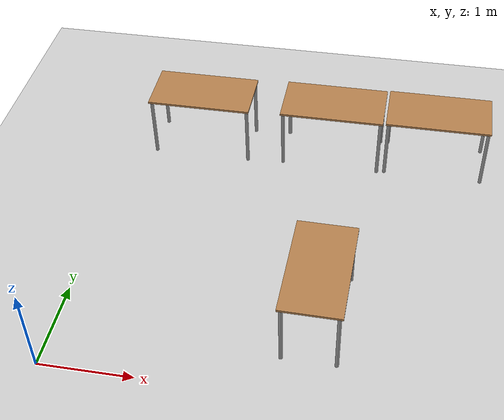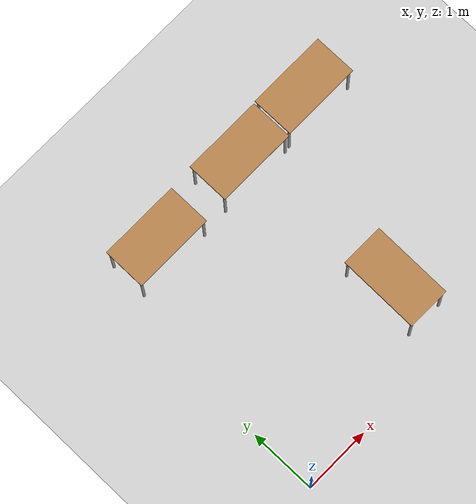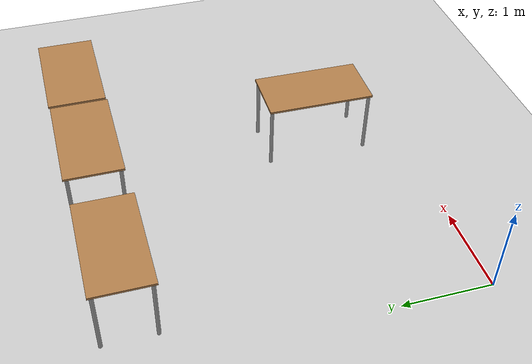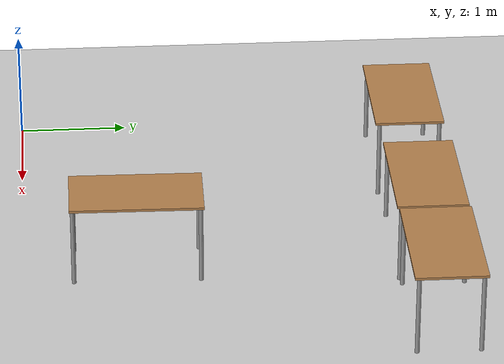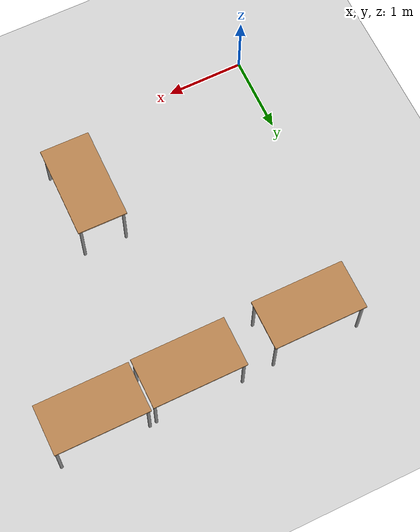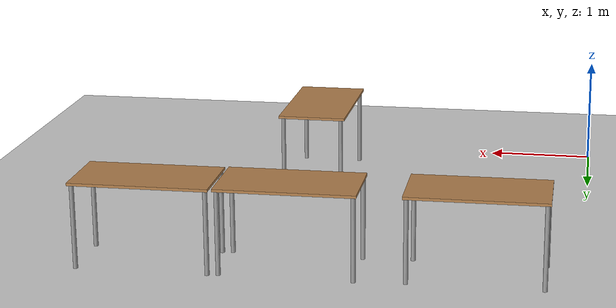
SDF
<sdf version="1.7">
 <world name="default">
  <model name="ground_plane">
   <static>1</static>
   <link name="link">
    <collision name="collision">
     <geometry><plane><normal>0 0 1</normal><size>100 100</size></plane></geometry>
     <surface>
      <contact><collide_bitmask>65535</collide_bitmask></contact>
      <friction><ode><mu>100</mu><mu2>50</mu2></ode></friction>
     </surface>
    </collision>
    <visual name="visual">
     <cast_shadows>0</cast_shadows>
     <geometry><plane><normal>0 0 1</normal><size>100 100</size></plane></geometry>
     <material>
      <script><uri>file://media/materials/scripts/gazebo.material</uri><name>Gazebo/Grey</name></script>
     </material>
    </visual>
   </link>
  </model>
  <model name="table_v2_clone_7">
   <link name="link">
    <inertial>
     <mass>1</mass>
     <inertia><ixx>1</ixx><ixy>0</ixy><ixz>0</ixz><iyy>1</iyy><iyz>0</iyz><izz>1</izz></inertia>
    </inertial>
    <visual name="visual1">
     <pose>0 0 0.75 0 -0 0</pose>
     <geometry><box><size>1.2 0.64 0.024</size></box></geometry>
     <material>
      <script><uri>file://media/materials/scripts/gazebo.material</uri><name>Gazebo/Wood</name></script>
      <shader type="pixel"><normal_map>__default__</normal_map></shader>
      <ambient>1 1 1 1</ambient>
      <diffuse>1 1 1 1</diffuse>
      <specular>0.2 0.2 0.2 1</specular>
      <emissive>0 0 0 1</emissive>
     </material>
    </visual>
    <visual name="front_left_leg">
     <pose>0.57 0.28 0.375 0 -0 0</pose>
     <geometry><cylinder><radius>0.02</radius><length>0.75</length></cylinder></geometry>
     <material>
      <script><uri>file://media/materials/scripts/gazebo.material</uri><name>Gazebo/Grey</name></script>
      <shader type="pixel"><normal_map>__default__</normal_map></shader>
      <ambient>0.3 0.3 0.3 1</ambient>
      <diffuse>0.7 0.7 0.7 1</diffuse>
      <specular>0.01 0.01 0.01 1</specular>
      <emissive>0 0 0 1</emissive>
     </material>
    </visual>
    <visual name="front_right_leg">
     <pose>0.57 -0.28 0.375 0 -0 0</pose>
     <geometry><cylinder><radius>0.02</radius><length>0.75</length></cylinder></geometry>
     <material>
      <script><uri>file://media/materials/scripts/gazebo.material</uri><name>Gazebo/Grey</name></script>
      <shader type="pixel"><normal_map>__default__</normal_map></shader>
      <ambient>0.3 0.3 0.3 1</ambient>
      <diffuse>0.7 0.7 0.7 1</diffuse>
      <specular>0.01 0.01 0.01 1</specular>
      <emissive>0 0 0 1</emissive>
     </material>
    </visual>
    <visual name="back_right_leg">
     <pose>-0.57 -0.28 0.375 0 -0 0</pose>
     <geometry><cylinder><radius>0.02</radius><length>0.75</length></cylinder></geometry>
     <material>
      <script><uri>file://media/materials/scripts/gazebo.material</uri><name>Gazebo/Grey</name></script>
      <shader type="pixel"><normal_map>__default__</normal_map></shader>
      <ambient>0.3 0.3 0.3 1</ambient>
      <diffuse>0.7 0.7 0.7 1</diffuse>
      <specular>0.01 0.01 0.01 1</specular>
      <emissive>0 0 0 1</emissive>
     </material>
    </visual>
    <visual name="back_left_leg">
     <pose>-0.57 0.28 0.375 0 -0 0</pose>
     <geometry><cylinder><radius>0.02</radius><length>0.75</length></cylinder></geometry>
     <material>
      <script><uri>file://media/materials/scripts/gazebo.material</uri><name>Gazebo/Grey</name></script>
      <shader type="pixel"><normal_map>__default__</normal_map></shader>
      <ambient>0.3 0.3 0.3 1</ambient>
      <diffuse>0.7 0.7 0.7 1</diffuse>
      <specular>0.01 0.01 0.01 1</specular>
      <emissive>0 0 0 1</emissive>
     </material>
    </visual>
    <collision name="surface">
     <pose>0 0 0.75 0 -0 0</pose>
     <geometry><box><size>1.2 0.64 0.024</size></box></geometry>
     <surface>
      <friction>
       <ode><mu>0.6</mu><mu2>0.6</mu2><fdir1>0 0 0</fdir1><slip1>0</slip1><slip2>0</slip2></ode>
       <torsional>
        <coefficient>1</coefficient>
        <patch_radius>0</patch_radius>
        <surface_radius>0</surface_radius>
        <use_patch_radius>1</use_patch_radius>
        <ode><slip>0</slip></ode>
       </torsional>
      </friction>
      <bounce><restitution_coefficient>0</restitution_coefficient><threshold>1e+06</threshold></bounce>
      <contact>
       <collide_without_contact>0</collide_without_contact>
       <collide_without_contact_bitmask>1</collide_without_contact_bitmask>
       <collide_bitmask>1</collide_bitmask>
       <ode>
        <soft_cfm>0</soft_cfm>
        <soft_erp>0.2</soft_erp>
        <kp>1e+13</kp>
        <kd>1</kd>
        <max_vel>0.01</max_vel>
        <min_depth>0</min_depth>
       </ode>
       <bullet>
        <split_impulse>1</split_impulse>
        <split_impulse_penetration_threshold>-0.01</split_impulse_penetration_threshold>
        <soft_cfm>0</soft_cfm>
        <soft_erp>0.2</soft_erp>
        <kp>1e+13</kp>
        <kd>1</kd>
       </bullet>
      </contact>
     </surface>
    </collision>
    <collision name="front_left_leg">
     <pose>0.57 0.28 0.375 0 -0 0</pose>
     <geometry><cylinder><radius>0.02</radius><length>0.75</length></cylinder></geometry>
     <surface>
      <friction>
       <ode><mu>1</mu><mu2>1</mu2><fdir1>0 0 0</fdir1><slip1>0</slip1><slip2>0</slip2></ode>
       <torsional>
        <coefficient>1</coefficient>
        <patch_radius>0</patch_radius>
        <surface_radius>0</surface_radius>
        <use_patch_radius>1</use_patch_radius>
        <ode><slip>0</slip></ode>
       </torsional>
      </friction>
      <bounce><restitution_coefficient>0</restitution_coefficient><threshold>1e+06</threshold></bounce>
      <contact>
       <collide_without_contact>0</collide_without_contact>
       <collide_without_contact_bitmask>1</collide_without_contact_bitmask>
       <collide_bitmask>1</collide_bitmask>
       <ode>
        <soft_cfm>0</soft_cfm>
        <soft_erp>0.2</soft_erp>
        <kp>1e+13</kp>
        <kd>1</kd>
        <max_vel>0.01</max_vel>
        <min_depth>0</min_depth>
       </ode>
       <bullet>
        <split_impulse>1</split_impulse>
        <split_impulse_penetration_threshold>-0.01</split_impulse_penetration_threshold>
        <soft_cfm>0</soft_cfm>
        <soft_erp>0.2</soft_erp>
        <kp>1e+13</kp>
        <kd>1</kd>
       </bullet>
      </contact>
     </surface>
    </collision>
    <collision name="front_right_leg">
     <pose>0.57 -0.28 0.375 0 -0 0</pose>
     <geometry><cylinder><radius>0.02</radius><length>0.75</length></cylinder></geometry>
     <surface>
      <friction>
       <ode><mu>1</mu><mu2>1</mu2><fdir1>0 0 0</fdir1><slip1>0</slip1><slip2>0</slip2></ode>
       <torsional>
        <coefficient>1</coefficient>
        <patch_radius>0</patch_radius>
        <surface_radius>0</surface_radius>
        <use_patch_radius>1</use_patch_radius>
        <ode><slip>0</slip></ode>
       </torsional>
      </friction>
      <bounce><restitution_coefficient>0</restitution_coefficient><threshold>1e+06</threshold></bounce>
      <contact>
       <collide_without_contact>0</collide_without_contact>
       <collide_without_contact_bitmask>1</collide_without_contact_bitmask>
       <collide_bitmask>1</collide_bitmask>
       <ode>
        <soft_cfm>0</soft_cfm>
        <soft_erp>0.2</soft_erp>
        <kp>1e+13</kp>
        <kd>1</kd>
        <max_vel>0.01</max_vel>
        <min_depth>0</min_depth>
       </ode>
       <bullet>
        <split_impulse>1</split_impulse>
        <split_impulse_penetration_threshold>-0.01</split_impulse_penetration_threshold>
        <soft_cfm>0</soft_cfm>
        <soft_erp>0.2</soft_erp>
        <kp>1e+13</kp>
        <kd>1</kd>
       </bullet>
      </contact>
     </surface>
    </collision>
    <collision name="back_right_leg">
     <pose>-0.57 -0.28 0.375 0 -0 0</pose>
     <geometry><cylinder><radius>0.02</radius><length>0.75</length></cylinder></geometry>
     <surface>
      <friction>
       <ode><mu>1</mu><mu2>1</mu2><fdir1>0 0 0</fdir1><slip1>0</slip1><slip2>0</slip2></ode>
       <torsional>
        <coefficient>1</coefficient>
        <patch_radius>0</patch_radius>
        <surface_radius>0</surface_radius>
        <use_patch_radius>1</use_patch_radius>
        <ode><slip>0</slip></ode>
       </torsional>
      </friction>
      <bounce><restitution_coefficient>0</restitution_coefficient><threshold>1e+06</threshold></bounce>
      <contact>
       <collide_without_contact>0</collide_without_contact>
       <collide_without_contact_bitmask>1</collide_without_contact_bitmask>
       <collide_bitmask>1</collide_bitmask>
       <ode>
        <soft_cfm>0</soft_cfm>
        <soft_erp>0.2</soft_erp>
        <kp>1e+13</kp>
        <kd>1</kd>
        <max_vel>0.01</max_vel>
        <min_depth>0</min_depth>
       </ode>
       <bullet>
        <split_impulse>1</split_impulse>
        <split_impulse_penetration_threshold>-0.01</split_impulse_penetration_threshold>
        <soft_cfm>0</soft_cfm>
        <soft_erp>0.2</soft_erp>
        <kp>1e+13</kp>
        <kd>1</kd>
       </bullet>
      </contact>
     </surface>
    </collision>
    <collision name="back_left_leg">
     <pose>-0.57 0.28 0.375 0 -0 0</pose>
     <geometry><cylinder><radius>0.02</radius><length>0.75</length></cylinder></geometry>
     <surface>
      <friction>
       <ode><mu>1</mu><mu2>1</mu2><fdir1>0 0 0</fdir1><slip1>0</slip1><slip2>0</slip2></ode>
       <torsional>
        <coefficient>1</coefficient>
        <patch_radius>0</patch_radius>
        <surface_radius>0</surface_radius>
        <use_patch_radius>1</use_patch_radius>
        <ode><slip>0</slip></ode>
       </torsional>
      </friction>
      <bounce><restitution_coefficient>0</restitution_coefficient><threshold>1e+06</threshold></bounce>
      <contact>
       <collide_without_contact>0</collide_without_contact>
       <collide_without_contact_bitmask>1</collide_without_contact_bitmask>
       <collide_bitmask>1</collide_bitmask>
       <ode>
        <soft_cfm>0</soft_cfm>
        <soft_erp>0.2</soft_erp>
        <kp>1e+13</kp>
        <kd>1</kd>
        <max_vel>0.01</max_vel>
        <min_depth>0</min_depth>
       </ode>
       <bullet>
        <split_impulse>1</split_impulse>
        <split_impulse_penetration_threshold>-0.01</split_impulse_penetration_threshold>
        <soft_cfm>0</soft_cfm>
        <soft_erp>0.2</soft_erp>
        <kp>1e+13</kp>
        <kd>1</kd>
       </bullet>
      </contact>
     </surface>
    </collision>
   </link>
   <static>1</static>
   <pose>0.894087 3.62509 0 0 -0 0</pose>
  </model>
  <model name="table_v2_clone_8">
   <link name="link">
    <inertial>
     <mass>1</mass>
     <inertia><ixx>1</ixx><ixy>0</ixy><ixz>0</ixz><iyy>1</iyy><iyz>0</iyz><izz>1</izz></inertia>
    </inertial>
    <visual name="visual1">
     <pose>0 0 0.75 0 -0 0</pose>
     <geometry><box><size>1.2 0.64 0.024</size></box></geometry>
     <material>
      <script><uri>file://media/materials/scripts/gazebo.material</uri><name>Gazebo/Wood</name></script>
      <shader type="pixel"><normal_map>__default__</normal_map></shader>
      <ambient>1 1 1 1</ambient>
      <diffuse>1 1 1 1</diffuse>
      <specular>0.2 0.2 0.2 1</specular>
      <emissive>0 0 0 1</emissive>
     </material>
    </visual>
    <visual name="front_left_leg">
     <pose>0.57 0.28 0.375 0 -0 0</pose>
     <geometry><cylinder><radius>0.02</radius><length>0.75</length></cylinder></geometry>
     <material>
      <script><uri>file://media/materials/scripts/gazebo.material</uri><name>Gazebo/Grey</name></script>
      <shader type="pixel"><normal_map>__default__</normal_map></shader>
      <ambient>0.3 0.3 0.3 1</ambient>
      <diffuse>0.7 0.7 0.7 1</diffuse>
      <specular>0.01 0.01 0.01 1</specular>
      <emissive>0 0 0 1</emissive>
     </material>
    </visual>
    <visual name="front_right_leg">
     <pose>0.57 -0.28 0.375 0 -0 0</pose>
     <geometry><cylinder><radius>0.02</radius><length>0.75</length></cylinder></geometry>
     <material>
      <script><uri>file://media/materials/scripts/gazebo.material</uri><name>Gazebo/Grey</name></script>
      <shader type="pixel"><normal_map>__default__</normal_map></shader>
      <ambient>0.3 0.3 0.3 1</ambient>
      <diffuse>0.7 0.7 0.7 1</diffuse>
      <specular>0.01 0.01 0.01 1</specular>
      <emissive>0 0 0 1</emissive>
     </material>
    </visual>
    <visual name="back_right_leg">
     <pose>-0.57 -0.28 0.375 0 -0 0</pose>
     <geometry><cylinder><radius>0.02</radius><length>0.75</length></cylinder></geometry>
     <material>
      <script><uri>file://media/materials/scripts/gazebo.material</uri><name>Gazebo/Grey</name></script>
      <shader type="pixel"><normal_map>__default__</normal_map></shader>
      <ambient>0.3 0.3 0.3 1</ambient>
      <diffuse>0.7 0.7 0.7 1</diffuse>
      <specular>0.01 0.01 0.01 1</specular>
      <emissive>0 0 0 1</emissive>
     </material>
    </visual>
    <visual name="back_left_leg">
     <pose>-0.57 0.28 0.375 0 -0 0</pose>
     <geometry><cylinder><radius>0.02</radius><length>0.75</length></cylinder></geometry>
     <material>
      <script><uri>file://media/materials/scripts/gazebo.material</uri><name>Gazebo/Grey</name></script>
      <shader type="pixel"><normal_map>__default__</normal_map></shader>
      <ambient>0.3 0.3 0.3 1</ambient>
      <diffuse>0.7 0.7 0.7 1</diffuse>
      <specular>0.01 0.01 0.01 1</specular>
      <emissive>0 0 0 1</emissive>
     </material>
    </visual>
    <collision name="surface">
     <pose>0 0 0.75 0 -0 0</pose>
     <geometry><box><size>1.2 0.64 0.024</size></box></geometry>
     <surface>
      <friction>
       <ode><mu>0.6</mu><mu2>0.6</mu2><fdir1>0 0 0</fdir1><slip1>0</slip1><slip2>0</slip2></ode>
       <torsional>
        <coefficient>1</coefficient>
        <patch_radius>0</patch_radius>
        <surface_radius>0</surface_radius>
        <use_patch_radius>1</use_patch_radius>
        <ode><slip>0</slip></ode>
       </torsional>
      </friction>
      <bounce><restitution_coefficient>0</restitution_coefficient><threshold>1e+06</threshold></bounce>
      <contact>
       <collide_without_contact>0</collide_without_contact>
       <collide_without_contact_bitmask>1</collide_without_contact_bitmask>
       <collide_bitmask>1</collide_bitmask>
       <ode>
        <soft_cfm>0</soft_cfm>
        <soft_erp>0.2</soft_erp>
        <kp>1e+13</kp>
        <kd>1</kd>
        <max_vel>0.01</max_vel>
        <min_depth>0</min_depth>
       </ode>
       <bullet>
        <split_impulse>1</split_impulse>
        <split_impulse_penetration_threshold>-0.01</split_impulse_penetration_threshold>
        <soft_cfm>0</soft_cfm>
        <soft_erp>0.2</soft_erp>
        <kp>1e+13</kp>
        <kd>1</kd>
       </bullet>
      </contact>
     </surface>
    </collision>
    <collision name="front_left_leg">
     <pose>0.57 0.28 0.375 0 -0 0</pose>
     <geometry><cylinder><radius>0.02</radius><length>0.75</length></cylinder></geometry>
     <surface>
      <friction>
       <ode><mu>1</mu><mu2>1</mu2><fdir1>0 0 0</fdir1><slip1>0</slip1><slip2>0</slip2></ode>
       <torsional>
        <coefficient>1</coefficient>
        <patch_radius>0</patch_radius>
        <surface_radius>0</surface_radius>
        <use_patch_radius>1</use_patch_radius>
        <ode><slip>0</slip></ode>
       </torsional>
      </friction>
      <bounce><restitution_coefficient>0</restitution_coefficient><threshold>1e+06</threshold></bounce>
      <contact>
       <collide_without_contact>0</collide_without_contact>
       <collide_without_contact_bitmask>1</collide_without_contact_bitmask>
       <collide_bitmask>1</collide_bitmask>
       <ode>
        <soft_cfm>0</soft_cfm>
        <soft_erp>0.2</soft_erp>
        <kp>1e+13</kp>
        <kd>1</kd>
        <max_vel>0.01</max_vel>
        <min_depth>0</min_depth>
       </ode>
       <bullet>
        <split_impulse>1</split_impulse>
        <split_impulse_penetration_threshold>-0.01</split_impulse_penetration_threshold>
        <soft_cfm>0</soft_cfm>
        <soft_erp>0.2</soft_erp>
        <kp>1e+13</kp>
        <kd>1</kd>
       </bullet>
      </contact>
     </surface>
    </collision>
    <collision name="front_right_leg">
     <pose>0.57 -0.28 0.375 0 -0 0</pose>
     <geometry><cylinder><radius>0.02</radius><length>0.75</length></cylinder></geometry>
     <surface>
      <friction>
       <ode><mu>1</mu><mu2>1</mu2><fdir1>0 0 0</fdir1><slip1>0</slip1><slip2>0</slip2></ode>
       <torsional>
        <coefficient>1</coefficient>
        <patch_radius>0</patch_radius>
        <surface_radius>0</surface_radius>
        <use_patch_radius>1</use_patch_radius>
        <ode><slip>0</slip></ode>
       </torsional>
      </friction>
      <bounce><restitution_coefficient>0</restitution_coefficient><threshold>1e+06</threshold></bounce>
      <contact>
       <collide_without_contact>0</collide_without_contact>
       <collide_without_contact_bitmask>1</collide_without_contact_bitmask>
       <collide_bitmask>1</collide_bitmask>
       <ode>
        <soft_cfm>0</soft_cfm>
        <soft_erp>0.2</soft_erp>
        <kp>1e+13</kp>
        <kd>1</kd>
        <max_vel>0.01</max_vel>
        <min_depth>0</min_depth>
       </ode>
       <bullet>
        <split_impulse>1</split_impulse>
        <split_impulse_penetration_threshold>-0.01</split_impulse_penetration_threshold>
        <soft_cfm>0</soft_cfm>
        <soft_erp>0.2</soft_erp>
        <kp>1e+13</kp>
        <kd>1</kd>
       </bullet>
      </contact>
     </surface>
    </collision>
    <collision name="back_right_leg">
     <pose>-0.57 -0.28 0.375 0 -0 0</pose>
     <geometry><cylinder><radius>0.02</radius><length>0.75</length></cylinder></geometry>
     <surface>
      <friction>
       <ode><mu>1</mu><mu2>1</mu2><fdir1>0 0 0</fdir1><slip1>0</slip1><slip2>0</slip2></ode>
       <torsional>
        <coefficient>1</coefficient>
        <patch_radius>0</patch_radius>
        <surface_radius>0</surface_radius>
        <use_patch_radius>1</use_patch_radius>
        <ode><slip>0</slip></ode>
       </torsional>
      </friction>
      <bounce><restitution_coefficient>0</restitution_coefficient><threshold>1e+06</threshold></bounce>
      <contact>
       <collide_without_contact>0</collide_without_contact>
       <collide_without_contact_bitmask>1</collide_without_contact_bitmask>
       <collide_bitmask>1</collide_bitmask>
       <ode>
        <soft_cfm>0</soft_cfm>
        <soft_erp>0.2</soft_erp>
        <kp>1e+13</kp>
        <kd>1</kd>
        <max_vel>0.01</max_vel>
        <min_depth>0</min_depth>
       </ode>
       <bullet>
        <split_impulse>1</split_impulse>
        <split_impulse_penetration_threshold>-0.01</split_impulse_penetration_threshold>
        <soft_cfm>0</soft_cfm>
        <soft_erp>0.2</soft_erp>
        <kp>1e+13</kp>
        <kd>1</kd>
       </bullet>
      </contact>
     </surface>
    </collision>
    <collision name="back_left_leg">
     <pose>-0.57 0.28 0.375 0 -0 0</pose>
     <geometry><cylinder><radius>0.02</radius><length>0.75</length></cylinder></geometry>
     <surface>
      <friction>
       <ode><mu>1</mu><mu2>1</mu2><fdir1>0 0 0</fdir1><slip1>0</slip1><slip2>0</slip2></ode>
       <torsional>
        <coefficient>1</coefficient>
        <patch_radius>0</patch_radius>
        <surface_radius>0</surface_radius>
        <use_patch_radius>1</use_patch_radius>
        <ode><slip>0</slip></ode>
       </torsional>
      </friction>
      <bounce><restitution_coefficient>0</restitution_coefficient><threshold>1e+06</threshold></bounce>
      <contact>
       <collide_without_contact>0</collide_without_contact>
       <collide_without_contact_bitmask>1</collide_without_contact_bitmask>
       <collide_bitmask>1</collide_bitmask>
       <ode>
        <soft_cfm>0</soft_cfm>
        <soft_erp>0.2</soft_erp>
        <kp>1e+13</kp>
        <kd>1</kd>
        <max_vel>0.01</max_vel>
        <min_depth>0</min_depth>
       </ode>
       <bullet>
        <split_impulse>1</split_impulse>
        <split_impulse_penetration_threshold>-0.01</split_impulse_penetration_threshold>
        <soft_cfm>0</soft_cfm>
        <soft_erp>0.2</soft_erp>
        <kp>1e+13</kp>
        <kd>1</kd>
       </bullet>
      </contact>
     </surface>
    </collision>
   </link>
   <static>1</static>
   <pose>2.46411 3.6546 0 0 -0 0</pose>
  </model>
  <model name="table_v2_clone_9">
   <link name="link">
    <inertial>
     <mass>1</mass>
     <inertia><ixx>1</ixx><ixy>0</ixy><ixz>0</ixz><iyy>1</iyy><iyz>0</iyz><izz>1</izz></inertia>
    </inertial>
    <visual name="visual1">
     <pose>0 0 0.75 0 -0 0</pose>
     <geometry><box><size>1.2 0.64 0.024</size></box></geometry>
     <material>
      <script><uri>file://media/materials/scripts/gazebo.material</uri><name>Gazebo/Wood</name></script>
      <shader type="pixel"><normal_map>__default__</normal_map></shader>
      <ambient>1 1 1 1</ambient>
      <diffuse>1 1 1 1</diffuse>
      <specular>0.2 0.2 0.2 1</specular>
      <emissive>0 0 0 1</emissive>
     </material>
    </visual>
    <visual name="front_left_leg">
     <pose>0.57 0.28 0.375 0 -0 0</pose>
     <geometry><cylinder><radius>0.02</radius><length>0.75</length></cylinder></geometry>
     <material>
      <script><uri>file://media/materials/scripts/gazebo.material</uri><name>Gazebo/Grey</name></script>
      <shader type="pixel"><normal_map>__default__</normal_map></shader>
      <ambient>0.3 0.3 0.3 1</ambient>
      <diffuse>0.7 0.7 0.7 1</diffuse>
      <specular>0.01 0.01 0.01 1</specular>
      <emissive>0 0 0 1</emissive>
     </material>
    </visual>
    <visual name="front_right_leg">
     <pose>0.57 -0.28 0.375 0 -0 0</pose>
     <geometry><cylinder><radius>0.02</radius><length>0.75</length></cylinder></geometry>
     <material>
      <script><uri>file://media/materials/scripts/gazebo.material</uri><name>Gazebo/Grey</name></script>
      <shader type="pixel"><normal_map>__default__</normal_map></shader>
      <ambient>0.3 0.3 0.3 1</ambient>
      <diffuse>0.7 0.7 0.7 1</diffuse>
      <specular>0.01 0.01 0.01 1</specular>
      <emissive>0 0 0 1</emissive>
     </material>
    </visual>
    <visual name="back_right_leg">
     <pose>-0.57 -0.28 0.375 0 -0 0</pose>
     <geometry><cylinder><radius>0.02</radius><length>0.75</length></cylinder></geometry>
     <material>
      <script><uri>file://media/materials/scripts/gazebo.material</uri><name>Gazebo/Grey</name></script>
      <shader type="pixel"><normal_map>__default__</normal_map></shader>
      <ambient>0.3 0.3 0.3 1</ambient>
      <diffuse>0.7 0.7 0.7 1</diffuse>
      <specular>0.01 0.01 0.01 1</specular>
      <emissive>0 0 0 1</emissive>
     </material>
    </visual>
    <visual name="back_left_leg">
     <pose>-0.57 0.28 0.375 0 -0 0</pose>
     <geometry><cylinder><radius>0.02</radius><length>0.75</length></cylinder></geometry>
     <material>
      <script><uri>file://media/materials/scripts/gazebo.material</uri><name>Gazebo/Grey</name></script>
      <shader type="pixel"><normal_map>__default__</normal_map></shader>
      <ambient>0.3 0.3 0.3 1</ambient>
      <diffuse>0.7 0.7 0.7 1</diffuse>
      <specular>0.01 0.01 0.01 1</specular>
      <emissive>0 0 0 1</emissive>
     </material>
    </visual>
    <collision name="surface">
     <pose>0 0 0.75 0 -0 0</pose>
     <geometry><box><size>1.2 0.64 0.024</size></box></geometry>
     <surface>
      <friction>
       <ode><mu>0.6</mu><mu2>0.6</mu2><fdir1>0 0 0</fdir1><slip1>0</slip1><slip2>0</slip2></ode>
       <torsional>
        <coefficient>1</coefficient>
        <patch_radius>0</patch_radius>
        <surface_radius>0</surface_radius>
        <use_patch_radius>1</use_patch_radius>
        <ode><slip>0</slip></ode>
       </torsional>
      </friction>
      <bounce><restitution_coefficient>0</restitution_coefficient><threshold>1e+06</threshold></bounce>
      <contact>
       <collide_without_contact>0</collide_without_contact>
       <collide_without_contact_bitmask>1</collide_without_contact_bitmask>
       <collide_bitmask>1</collide_bitmask>
       <ode>
        <soft_cfm>0</soft_cfm>
        <soft_erp>0.2</soft_erp>
        <kp>1e+13</kp>
        <kd>1</kd>
        <max_vel>0.01</max_vel>
        <min_depth>0</min_depth>
       </ode>
       <bullet>
        <split_impulse>1</split_impulse>
        <split_impulse_penetration_threshold>-0.01</split_impulse_penetration_threshold>
        <soft_cfm>0</soft_cfm>
        <soft_erp>0.2</soft_erp>
        <kp>1e+13</kp>
        <kd>1</kd>
       </bullet>
      </contact>
     </surface>
    </collision>
    <collision name="front_left_leg">
     <pose>0.57 0.28 0.375 0 -0 0</pose>
     <geometry><cylinder><radius>0.02</radius><length>0.75</length></cylinder></geometry>
     <surface>
      <friction>
       <ode><mu>1</mu><mu2>1</mu2><fdir1>0 0 0</fdir1><slip1>0</slip1><slip2>0</slip2></ode>
       <torsional>
        <coefficient>1</coefficient>
        <patch_radius>0</patch_radius>
        <surface_radius>0</surface_radius>
        <use_patch_radius>1</use_patch_radius>
        <ode><slip>0</slip></ode>
       </torsional>
      </friction>
      <bounce><restitution_coefficient>0</restitution_coefficient><threshold>1e+06</threshold></bounce>
      <contact>
       <collide_without_contact>0</collide_without_contact>
       <collide_without_contact_bitmask>1</collide_without_contact_bitmask>
       <collide_bitmask>1</collide_bitmask>
       <ode>
        <soft_cfm>0</soft_cfm>
        <soft_erp>0.2</soft_erp>
        <kp>1e+13</kp>
        <kd>1</kd>
        <max_vel>0.01</max_vel>
        <min_depth>0</min_depth>
       </ode>
       <bullet>
        <split_impulse>1</split_impulse>
        <split_impulse_penetration_threshold>-0.01</split_impulse_penetration_threshold>
        <soft_cfm>0</soft_cfm>
        <soft_erp>0.2</soft_erp>
        <kp>1e+13</kp>
        <kd>1</kd>
       </bullet>
      </contact>
     </surface>
    </collision>
    <collision name="front_right_leg">
     <pose>0.57 -0.28 0.375 0 -0 0</pose>
     <geometry><cylinder><radius>0.02</radius><length>0.75</length></cylinder></geometry>
     <surface>
      <friction>
       <ode><mu>1</mu><mu2>1</mu2><fdir1>0 0 0</fdir1><slip1>0</slip1><slip2>0</slip2></ode>
       <torsional>
        <coefficient>1</coefficient>
        <patch_radius>0</patch_radius>
        <surface_radius>0</surface_radius>
        <use_patch_radius>1</use_patch_radius>
        <ode><slip>0</slip></ode>
       </torsional>
      </friction>
      <bounce><restitution_coefficient>0</restitution_coefficient><threshold>1e+06</threshold></bounce>
      <contact>
       <collide_without_contact>0</collide_without_contact>
       <collide_without_contact_bitmask>1</collide_without_contact_bitmask>
       <collide_bitmask>1</collide_bitmask>
       <ode>
        <soft_cfm>0</soft_cfm>
        <soft_erp>0.2</soft_erp>
        <kp>1e+13</kp>
        <kd>1</kd>
        <max_vel>0.01</max_vel>
        <min_depth>0</min_depth>
       </ode>
       <bullet>
        <split_impulse>1</split_impulse>
        <split_impulse_penetration_threshold>-0.01</split_impulse_penetration_threshold>
        <soft_cfm>0</soft_cfm>
        <soft_erp>0.2</soft_erp>
        <kp>1e+13</kp>
        <kd>1</kd>
       </bullet>
      </contact>
     </surface>
    </collision>
    <collision name="back_right_leg">
     <pose>-0.57 -0.28 0.375 0 -0 0</pose>
     <geometry><cylinder><radius>0.02</radius><length>0.75</length></cylinder></geometry>
     <surface>
      <friction>
       <ode><mu>1</mu><mu2>1</mu2><fdir1>0 0 0</fdir1><slip1>0</slip1><slip2>0</slip2></ode>
       <torsional>
        <coefficient>1</coefficient>
        <patch_radius>0</patch_radius>
        <surface_radius>0</surface_radius>
        <use_patch_radius>1</use_patch_radius>
        <ode><slip>0</slip></ode>
       </torsional>
      </friction>
      <bounce><restitution_coefficient>0</restitution_coefficient><threshold>1e+06</threshold></bounce>
      <contact>
       <collide_without_contact>0</collide_without_contact>
       <collide_without_contact_bitmask>1</collide_without_contact_bitmask>
       <collide_bitmask>1</collide_bitmask>
       <ode>
        <soft_cfm>0</soft_cfm>
        <soft_erp>0.2</soft_erp>
        <kp>1e+13</kp>
        <kd>1</kd>
        <max_vel>0.01</max_vel>
        <min_depth>0</min_depth>
       </ode>
       <bullet>
        <split_impulse>1</split_impulse>
        <split_impulse_penetration_threshold>-0.01</split_impulse_penetration_threshold>
        <soft_cfm>0</soft_cfm>
        <soft_erp>0.2</soft_erp>
        <kp>1e+13</kp>
        <kd>1</kd>
       </bullet>
      </contact>
     </surface>
    </collision>
    <collision name="back_left_leg">
     <pose>-0.57 0.28 0.375 0 -0 0</pose>
     <geometry><cylinder><radius>0.02</radius><length>0.75</length></cylinder></geometry>
     <surface>
      <friction>
       <ode><mu>1</mu><mu2>1</mu2><fdir1>0 0 0</fdir1><slip1>0</slip1><slip2>0</slip2></ode>
       <torsional>
        <coefficient>1</coefficient>
        <patch_radius>0</patch_radius>
        <surface_radius>0</surface_radius>
        <use_patch_radius>1</use_patch_radius>
        <ode><slip>0</slip></ode>
       </torsional>
      </friction>
      <bounce><restitution_coefficient>0</restitution_coefficient><threshold>1e+06</threshold></bounce>
      <contact>
       <collide_without_contact>0</collide_without_contact>
       <collide_without_contact_bitmask>1</collide_without_contact_bitmask>
       <collide_bitmask>1</collide_bitmask>
       <ode>
        <soft_cfm>0</soft_cfm>
        <soft_erp>0.2</soft_erp>
        <kp>1e+13</kp>
        <kd>1</kd>
        <max_vel>0.01</max_vel>
        <min_depth>0</min_depth>
       </ode>
       <bullet>
        <split_impulse>1</split_impulse>
        <split_impulse_penetration_threshold>-0.01</split_impulse_penetration_threshold>
        <soft_cfm>0</soft_cfm>
        <soft_erp>0.2</soft_erp>
        <kp>1e+13</kp>
        <kd>1</kd>
       </bullet>
      </contact>
     </surface>
    </collision>
   </link>
   <static>1</static>
   <pose>3.69536 3.66938 0 0 -0 0</pose>
  </model>
  <model name="table_v2_clone_11_clone_clone">
   <link name="link">
    <inertial>
     <mass>1</mass>
     <inertia><ixx>1</ixx><ixy>0</ixy><ixz>0</ixz><iyy>1</iyy><iyz>0</iyz><izz>1</izz></inertia>
    </inertial>
    <visual name="visual1">
     <pose>0 0 0.75 0 -0 0</pose>
     <geometry><box><size>1.2 0.64 0.024</size></box></geometry>
     <material>
      <script><uri>file://media/materials/scripts/gazebo.material</uri><name>Gazebo/Wood</name></script>
      <shader type="pixel"><normal_map>__default__</normal_map></shader>
      <ambient>1 1 1 1</ambient>
      <diffuse>1 1 1 1</diffuse>
      <specular>0.2 0.2 0.2 1</specular>
      <emissive>0 0 0 1</emissive>
     </material>
    </visual>
    <visual name="front_left_leg">
     <pose>0.57 0.28 0.375 0 -0 0</pose>
     <geometry><cylinder><radius>0.02</radius><length>0.75</length></cylinder></geometry>
     <material>
      <script><uri>file://media/materials/scripts/gazebo.material</uri><name>Gazebo/Grey</name></script>
      <shader type="pixel"><normal_map>__default__</normal_map></shader>
      <ambient>0.3 0.3 0.3 1</ambient>
      <diffuse>0.7 0.7 0.7 1</diffuse>
      <specular>0.01 0.01 0.01 1</specular>
      <emissive>0 0 0 1</emissive>
     </material>
    </visual>
    <visual name="front_right_leg">
     <pose>0.57 -0.28 0.375 0 -0 0</pose>
     <geometry><cylinder><radius>0.02</radius><length>0.75</length></cylinder></geometry>
     <material>
      <script><uri>file://media/materials/scripts/gazebo.material</uri><name>Gazebo/Grey</name></script>
      <shader type="pixel"><normal_map>__default__</normal_map></shader>
      <ambient>0.3 0.3 0.3 1</ambient>
      <diffuse>0.7 0.7 0.7 1</diffuse>
      <specular>0.01 0.01 0.01 1</specular>
      <emissive>0 0 0 1</emissive>
     </material>
    </visual>
    <visual name="back_right_leg">
     <pose>-0.57 -0.28 0.375 0 -0 0</pose>
     <geometry><cylinder><radius>0.02</radius><length>0.75</length></cylinder></geometry>
     <material>
      <script><uri>file://media/materials/scripts/gazebo.material</uri><name>Gazebo/Grey</name></script>
      <shader type="pixel"><normal_map>__default__</normal_map></shader>
      <ambient>0.3 0.3 0.3 1</ambient>
      <diffuse>0.7 0.7 0.7 1</diffuse>
      <specular>0.01 0.01 0.01 1</specular>
      <emissive>0 0 0 1</emissive>
     </material>
    </visual>
    <visual name="back_left_leg">
     <pose>-0.57 0.28 0.375 0 -0 0</pose>
     <geometry><cylinder><radius>0.02</radius><length>0.75</length></cylinder></geometry>
     <material>
      <script><uri>file://media/materials/scripts/gazebo.material</uri><name>Gazebo/Grey</name></script>
      <shader type="pixel"><normal_map>__default__</normal_map></shader>
      <ambient>0.3 0.3 0.3 1</ambient>
      <diffuse>0.7 0.7 0.7 1</diffuse>
      <specular>0.01 0.01 0.01 1</specular>
      <emissive>0 0 0 1</emissive>
     </material>
    </visual>
    <collision name="surface">
     <pose>0 0 0.75 0 -0 0</pose>
     <geometry><box><size>1.2 0.64 0.024</size></box></geometry>
     <surface>
      <friction>
       <ode><mu>0.6</mu><mu2>0.6</mu2><fdir1>0 0 0</fdir1><slip1>0</slip1><slip2>0</slip2></ode>
       <torsional>
        <coefficient>1</coefficient>
        <patch_radius>0</patch_radius>
        <surface_radius>0</surface_radius>
        <use_patch_radius>1</use_patch_radius>
        <ode><slip>0</slip></ode>
       </torsional>
      </friction>
      <bounce><restitution_coefficient>0</restitution_coefficient><threshold>1e+06</threshold></bounce>
      <contact>
       <collide_without_contact>0</collide_without_contact>
       <collide_without_contact_bitmask>1</collide_without_contact_bitmask>
       <collide_bitmask>1</collide_bitmask>
       <ode>
        <soft_cfm>0</soft_cfm>
        <soft_erp>0.2</soft_erp>
        <kp>1e+13</kp>
        <kd>1</kd>
        <max_vel>0.01</max_vel>
        <min_depth>0</min_depth>
       </ode>
       <bullet>
        <split_impulse>1</split_impulse>
        <split_impulse_penetration_threshold>-0.01</split_impulse_penetration_threshold>
        <soft_cfm>0</soft_cfm>
        <soft_erp>0.2</soft_erp>
        <kp>1e+13</kp>
        <kd>1</kd>
       </bullet>
      </contact>
     </surface>
    </collision>
    <collision name="front_left_leg">
     <pose>0.57 0.28 0.375 0 -0 0</pose>
     <geometry><cylinder><radius>0.02</radius><length>0.75</length></cylinder></geometry>
     <surface>
      <friction>
       <ode><mu>1</mu><mu2>1</mu2><fdir1>0 0 0</fdir1><slip1>0</slip1><slip2>0</slip2></ode>
       <torsional>
        <coefficient>1</coefficient>
        <patch_radius>0</patch_radius>
        <surface_radius>0</surface_radius>
        <use_patch_radius>1</use_patch_radius>
        <ode><slip>0</slip></ode>
       </torsional>
      </friction>
      <bounce><restitution_coefficient>0</restitution_coefficient><threshold>1e+06</threshold></bounce>
      <contact>
       <collide_without_contact>0</collide_without_contact>
       <collide_without_contact_bitmask>1</collide_without_contact_bitmask>
       <collide_bitmask>1</collide_bitmask>
       <ode>
        <soft_cfm>0</soft_cfm>
        <soft_erp>0.2</soft_erp>
        <kp>1e+13</kp>
        <kd>1</kd>
        <max_vel>0.01</max_vel>
        <min_depth>0</min_depth>
       </ode>
       <bullet>
        <split_impulse>1</split_impulse>
        <split_impulse_penetration_threshold>-0.01</split_impulse_penetration_threshold>
        <soft_cfm>0</soft_cfm>
        <soft_erp>0.2</soft_erp>
        <kp>1e+13</kp>
        <kd>1</kd>
       </bullet>
      </contact>
     </surface>
    </collision>
    <collision name="front_right_leg">
     <pose>0.57 -0.28 0.375 0 -0 0</pose>
     <geometry><cylinder><radius>0.02</radius><length>0.75</length></cylinder></geometry>
     <surface>
      <friction>
       <ode><mu>1</mu><mu2>1</mu2><fdir1>0 0 0</fdir1><slip1>0</slip1><slip2>0</slip2></ode>
       <torsional>
        <coefficient>1</coefficient>
        <patch_radius>0</patch_radius>
        <surface_radius>0</surface_radius>
        <use_patch_radius>1</use_patch_radius>
        <ode><slip>0</slip></ode>
       </torsional>
      </friction>
      <bounce><restitution_coefficient>0</restitution_coefficient><threshold>1e+06</threshold></bounce>
      <contact>
       <collide_without_contact>0</collide_without_contact>
       <collide_without_contact_bitmask>1</collide_without_contact_bitmask>
       <collide_bitmask>1</collide_bitmask>
       <ode>
        <soft_cfm>0</soft_cfm>
        <soft_erp>0.2</soft_erp>
        <kp>1e+13</kp>
        <kd>1</kd>
        <max_vel>0.01</max_vel>
        <min_depth>0</min_depth>
       </ode>
       <bullet>
        <split_impulse>1</split_impulse>
        <split_impulse_penetration_threshold>-0.01</split_impulse_penetration_threshold>
        <soft_cfm>0</soft_cfm>
        <soft_erp>0.2</soft_erp>
        <kp>1e+13</kp>
        <kd>1</kd>
       </bullet>
      </contact>
     </surface>
    </collision>
    <collision name="back_right_leg">
     <pose>-0.57 -0.28 0.375 0 -0 0</pose>
     <geometry><cylinder><radius>0.02</radius><length>0.75</length></cylinder></geometry>
     <surface>
      <friction>
       <ode><mu>1</mu><mu2>1</mu2><fdir1>0 0 0</fdir1><slip1>0</slip1><slip2>0</slip2></ode>
       <torsional>
        <coefficient>1</coefficient>
        <patch_radius>0</patch_radius>
        <surface_radius>0</surface_radius>
        <use_patch_radius>1</use_patch_radius>
        <ode><slip>0</slip></ode>
       </torsional>
      </friction>
      <bounce><restitution_coefficient>0</restitution_coefficient><threshold>1e+06</threshold></bounce>
      <contact>
       <collide_without_contact>0</collide_without_contact>
       <collide_without_contact_bitmask>1</collide_without_contact_bitmask>
       <collide_bitmask>1</collide_bitmask>
       <ode>
        <soft_cfm>0</soft_cfm>
        <soft_erp>0.2</soft_erp>
        <kp>1e+13</kp>
        <kd>1</kd>
        <max_vel>0.01</max_vel>
        <min_depth>0</min_depth>
       </ode>
       <bullet>
        <split_impulse>1</split_impulse>
        <split_impulse_penetration_threshold>-0.01</split_impulse_penetration_threshold>
        <soft_cfm>0</soft_cfm>
        <soft_erp>0.2</soft_erp>
        <kp>1e+13</kp>
        <kd>1</kd>
       </bullet>
      </contact>
     </surface>
    </collision>
    <collision name="back_left_leg">
     <pose>-0.57 0.28 0.375 0 -0 0</pose>
     <geometry><cylinder><radius>0.02</radius><length>0.75</length></cylinder></geometry>
     <surface>
      <friction>
       <ode><mu>1</mu><mu2>1</mu2><fdir1>0 0 0</fdir1><slip1>0</slip1><slip2>0</slip2></ode>
       <torsional>
        <coefficient>1</coefficient>
        <patch_radius>0</patch_radius>
        <surface_radius>0</surface_radius>
        <use_patch_radius>1</use_patch_radius>
        <ode><slip>0</slip></ode>
       </torsional>
      </friction>
      <bounce><restitution_coefficient>0</restitution_coefficient><threshold>1e+06</threshold></bounce>
      <contact>
       <collide_without_contact>0</collide_without_contact>
       <collide_without_contact_bitmask>1</collide_without_contact_bitmask>
       <collide_bitmask>1</collide_bitmask>
       <ode>
        <soft_cfm>0</soft_cfm>
        <soft_erp>0.2</soft_erp>
        <kp>1e+13</kp>
        <kd>1</kd>
        <max_vel>0.01</max_vel>
        <min_depth>0</min_depth>
       </ode>
       <bullet>
        <split_impulse>1</split_impulse>
        <split_impulse_penetration_threshold>-0.01</split_impulse_penetration_threshold>
        <soft_cfm>0</soft_cfm>
        <soft_erp>0.2</soft_erp>
        <kp>1e+13</kp>
        <kd>1</kd>
       </bullet>
      </contact>
     </surface>
    </collision>
   </link>
   <static>1</static>
   <pose>2.64462 1.03408 0 0 0 -1.58295</pose>
  </model>
 </world>
</sdf>
